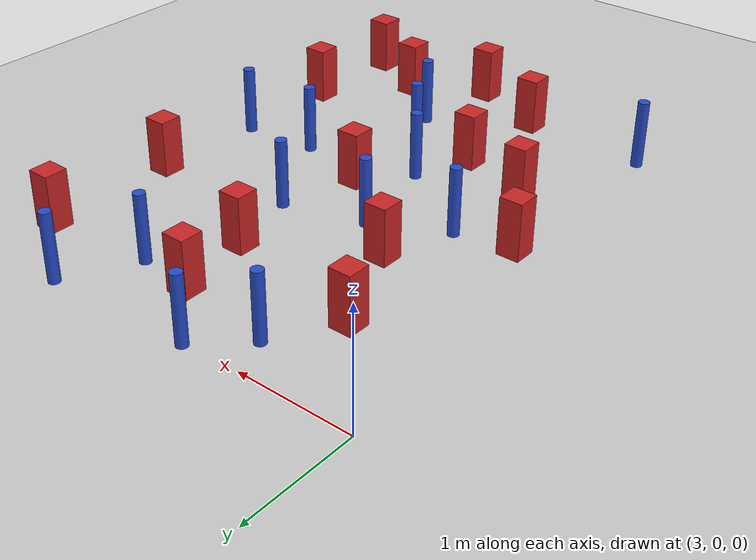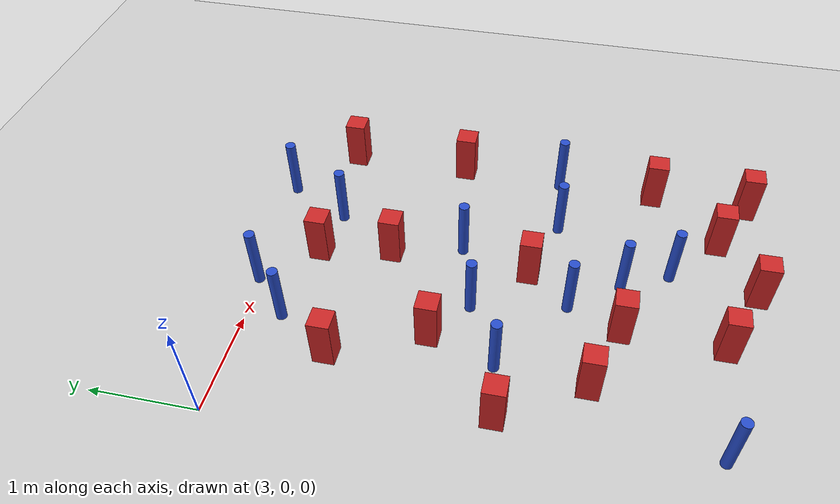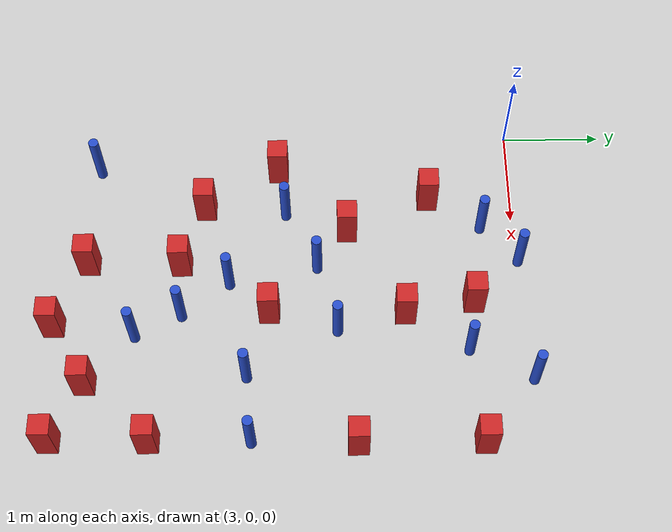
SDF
<sdf version="1.6">
 <world name="default">
  <model name="ground_plane">
   <static>1</static>
   <link name="link">
    <collision name="collision">
     <geometry><plane><normal>0 0 1</normal><size>100 100</size></plane></geometry>
     <surface><friction><ode><mu>100</mu><mu2>50</mu2></ode></friction></surface>
    </collision>
    <visual name="visual">
     <cast_shadows>0</cast_shadows>
     <geometry><plane><normal>0 0 1</normal><size>100 100</size></plane></geometry>
     <material>
      <ambient>1.0 1.0 1.0 1.0</ambient>
      <diffuse>0.8 0.8 0.8 1.0</diffuse>
      <specular>0.01 0.01 0.01 1.000000</specular>
     </material>
    </visual>
   </link>
  </model>
  <model name="pole_obstacle16">
   <static>true</static>
   <pose>4.10393876735 -0.329731906449 2.88873142074e-08 -9.90536689981e-09 4.60219948986e-07 -1.20965994962e-07</pose>
   <link name="link">
    <pose>0 0 0.3 0 -0 0</pose>
    <inertial>
     <mass>1</mass>
     <inertia><ixx>0.145833</ixx><ixy>0</ixy><ixz>0</ixz><iyy>0.145833</iyy><iyz>0</iyz><izz>0.125</izz></inertia>
    </inertial>
    <collision name="collision">
     <geometry><cylinder><radius>0.05</radius><length>.6</length></cylinder></geometry>
    </collision>
    <visual name="visual">
     <geometry><cylinder><radius>0.05</radius><length>.6</length></cylinder></geometry>
     <material>
      <script><name>Gazebo/Blue</name><uri>file://media/materials/scripts/gazebo.material</uri></script>
     </material>
    </visual>
   </link>
  </model>
  <model name="pole_obstacle36">
   <static>true</static>
   <pose>3.38603469121 -4.26538103777 2.88873142074e-08 -9.90536689859e-09 4.60219948989e-07 -1.20965994961e-07</pose>
   <link name="link">
    <pose>0 0 0.3 0 -0 0</pose>
    <inertial>
     <mass>1</mass>
     <inertia><ixx>0.145833</ixx><ixy>0</ixy><ixz>0</ixz><iyy>0.145833</iyy><iyz>0</iyz><izz>0.125</izz></inertia>
    </inertial>
    <collision name="collision">
     <geometry><cylinder><radius>0.05</radius><length>.6</length></cylinder></geometry>
    </collision>
    <visual name="visual">
     <geometry><cylinder><radius>0.05</radius><length>.6</length></cylinder></geometry>
     <material>
      <script><name>Gazebo/Blue</name><uri>file://media/materials/scripts/gazebo.material</uri></script>
     </material>
    </visual>
   </link>
  </model>
  <model name="pole_obstacle39">
   <static>true</static>
   <pose>4.72475378605 -2.88024928245 2.88873142074e-08 -9.90536690245e-09 4.6021994898e-07 -1.20965994966e-07</pose>
   <link name="link">
    <pose>0 0 0.3 0 -0 0</pose>
    <inertial>
     <mass>1</mass>
     <inertia><ixx>0.145833</ixx><ixy>0</ixy><ixz>0</ixz><iyy>0.145833</iyy><iyz>0</iyz><izz>0.125</izz></inertia>
    </inertial>
    <collision name="collision">
     <geometry><cylinder><radius>0.05</radius><length>.6</length></cylinder></geometry>
    </collision>
    <visual name="visual">
     <geometry><cylinder><radius>0.05</radius><length>.6</length></cylinder></geometry>
     <material>
      <script><name>Gazebo/Blue</name><uri>file://media/materials/scripts/gazebo.material</uri></script>
     </material>
    </visual>
   </link>
  </model>
  <model name="square_post_obstacle40">
   <static>true</static>
   <pose>5.0779610593 -1.13117154271 8.22691968438e-08 7.2212513382e-06 -7.54495500217e-07 2.29674213826e-05</pose>
   <link name="link">
    <pose>0 0 0.25 0 -0 0</pose>
    <inertial>
     <mass>100</mass>
     <inertia>
      <ixx>0.166667</ixx>
      <ixy>0</ixy>
      <ixz>0</ixz>
      <iyy>0.166667</iyy>
      <iyz>0</iyz>
      <izz>0.166667</izz>
     </inertia>
    </inertial>
    <collision name="collision"><geometry><box><size>.2 .2 .5</size></box></geometry></collision>
    <visual name="visual">
     <geometry><box><size>.2 .2 .5</size></box></geometry>
     <material>
      <script><name>Gazebo/Red</name><uri>file://media/materials/scripts/gazebo.material</uri></script>
     </material>
    </visual>
   </link>
  </model>
  <model name="pole_obstacle46">
   <static>true</static>
   <pose>5.74136471731 -2.68708174946 2.88873142074e-08 -9.90536690245e-09 4.6021994898e-07 -1.20965994966e-07</pose>
   <link name="link">
    <pose>0 0 0.3 0 -0 0</pose>
    <inertial>
     <mass>1</mass>
     <inertia><ixx>0.145833</ixx><ixy>0</ixy><ixz>0</ixz><iyy>0.145833</iyy><iyz>0</iyz><izz>0.125</izz></inertia>
    </inertial>
    <collision name="collision">
     <geometry><cylinder><radius>0.05</radius><length>.6</length></cylinder></geometry>
    </collision>
    <visual name="visual">
     <geometry><cylinder><radius>0.05</radius><length>.6</length></cylinder></geometry>
     <material>
      <script><name>Gazebo/Blue</name><uri>file://media/materials/scripts/gazebo.material</uri></script>
     </material>
    </visual>
   </link>
  </model>
  <model name="square_post_obstacle53">
   <static>true</static>
   <pose>5.05509290788 -2.47497143561 8.22691968438e-08 7.2212513382e-06 -7.54495500217e-07 2.29674213826e-05</pose>
   <link name="link">
    <pose>0 0 0.25 0 -0 0</pose>
    <inertial>
     <mass>100</mass>
     <inertia>
      <ixx>0.166667</ixx>
      <ixy>0</ixy>
      <ixz>0</ixz>
      <iyy>0.166667</iyy>
      <iyz>0</iyz>
      <izz>0.166667</izz>
     </inertia>
    </inertial>
    <collision name="collision"><geometry><box><size>.2 .2 .5</size></box></geometry></collision>
    <visual name="visual">
     <geometry><box><size>.2 .2 .5</size></box></geometry>
     <material>
      <script><name>Gazebo/Red</name><uri>file://media/materials/scripts/gazebo.material</uri></script>
     </material>
    </visual>
   </link>
  </model>
  <model name="square_post_obstacle64">
   <static>true</static>
   <pose>4.49527817915 -4.29552521567 8.22691968438e-08 7.22125133819e-06 -7.54495500217e-07 2.29674213826e-05</pose>
   <link name="link">
    <pose>0 0 0.25 0 -0 0</pose>
    <inertial>
     <mass>100</mass>
     <inertia>
      <ixx>0.166667</ixx>
      <ixy>0</ixy>
      <ixz>0</ixz>
      <iyy>0.166667</iyy>
      <iyz>0</iyz>
      <izz>0.166667</izz>
     </inertia>
    </inertial>
    <collision name="collision"><geometry><box><size>.2 .2 .5</size></box></geometry></collision>
    <visual name="visual">
     <geometry><box><size>.2 .2 .5</size></box></geometry>
     <material>
      <script><name>Gazebo/Red</name><uri>file://media/materials/scripts/gazebo.material</uri></script>
     </material>
    </visual>
   </link>
  </model>
  <model name="pole_obstacle74">
   <static>true</static>
   <pose>5.07601663097 -3.34591447213 2.88873142074e-08 -9.90536690245e-09 4.6021994898e-07 -1.20965994966e-07</pose>
   <link name="link">
    <pose>0 0 0.3 0 -0 0</pose>
    <inertial>
     <mass>1</mass>
     <inertia><ixx>0.145833</ixx><ixy>0</ixy><ixz>0</ixz><iyy>0.145833</iyy><iyz>0</iyz><izz>0.125</izz></inertia>
    </inertial>
    <collision name="collision">
     <geometry><cylinder><radius>0.05</radius><length>.6</length></cylinder></geometry>
    </collision>
    <visual name="visual">
     <geometry><cylinder><radius>0.05</radius><length>.6</length></cylinder></geometry>
     <material>
      <script><name>Gazebo/Blue</name><uri>file://media/materials/scripts/gazebo.material</uri></script>
     </material>
    </visual>
   </link>
  </model>
  <model name="square_post_obstacle82">
   <static>true</static>
   <pose>4.51453344151 -3.36527250385 8.22691968438e-08 7.2212513382e-06 -7.54495500217e-07 2.29674213826e-05</pose>
   <link name="link">
    <pose>0 0 0.25 0 -0 0</pose>
    <inertial>
     <mass>100</mass>
     <inertia>
      <ixx>0.166667</ixx>
      <ixy>0</ixy>
      <ixz>0</ixz>
      <iyy>0.166667</iyy>
      <iyz>0</iyz>
      <izz>0.166667</izz>
     </inertia>
    </inertial>
    <collision name="collision"><geometry><box><size>.2 .2 .5</size></box></geometry></collision>
    <visual name="visual">
     <geometry><box><size>.2 .2 .5</size></box></geometry>
     <material>
      <script><name>Gazebo/Red</name><uri>file://media/materials/scripts/gazebo.material</uri></script>
     </material>
    </visual>
   </link>
  </model>
  <model name="square_post_obstacle89">
   <static>true</static>
   <pose>5.18198364785 -4.59470534881 8.22691968438e-08 7.22125133819e-06 -7.54495500217e-07 2.29674213826e-05</pose>
   <link name="link">
    <pose>0 0 0.25 0 -0 0</pose>
    <inertial>
     <mass>100</mass>
     <inertia>
      <ixx>0.166667</ixx>
      <ixy>0</ixy>
      <ixz>0</ixz>
      <iyy>0.166667</iyy>
      <iyz>0</iyz>
      <izz>0.166667</izz>
     </inertia>
    </inertial>
    <collision name="collision"><geometry><box><size>.2 .2 .5</size></box></geometry></collision>
    <visual name="visual">
     <geometry><box><size>.2 .2 .5</size></box></geometry>
     <material>
      <script><name>Gazebo/Red</name><uri>file://media/materials/scripts/gazebo.material</uri></script>
     </material>
    </visual>
   </link>
  </model>
  <model name="square_post_obstacle95">
   <static>true</static>
   <pose>3.86135219473 -3.14104356581 8.22691968438e-08 7.2212513382e-06 -7.54495500217e-07 2.29674213826e-05</pose>
   <link name="link">
    <pose>0 0 0.25 0 -0 0</pose>
    <inertial>
     <mass>100</mass>
     <inertia>
      <ixx>0.166667</ixx>
      <ixy>0</ixy>
      <ixz>0</ixz>
      <iyy>0.166667</iyy>
      <iyz>0</iyz>
      <izz>0.166667</izz>
     </inertia>
    </inertial>
    <collision name="collision"><geometry><box><size>.2 .2 .5</size></box></geometry></collision>
    <visual name="visual">
     <geometry><box><size>.2 .2 .5</size></box></geometry>
     <material>
      <script><name>Gazebo/Red</name><uri>file://media/materials/scripts/gazebo.material</uri></script>
     </material>
    </visual>
   </link>
  </model>
  <model name="pole_obstacle116">
   <static>true</static>
   <pose>5.47581330239 -0.514907667353 2.88873142074e-08 -9.90536689968e-09 4.60219948986e-07 -1.20965994963e-07</pose>
   <link name="link">
    <pose>0 0 0.3 0 -0 0</pose>
    <inertial>
     <mass>1</mass>
     <inertia><ixx>0.145833</ixx><ixy>0</ixy><ixz>0</ixz><iyy>0.145833</iyy><iyz>0</iyz><izz>0.125</izz></inertia>
    </inertial>
    <collision name="collision">
     <geometry><cylinder><radius>0.05</radius><length>.6</length></cylinder></geometry>
    </collision>
    <visual name="visual">
     <geometry><cylinder><radius>0.05</radius><length>.6</length></cylinder></geometry>
     <material>
      <script><name>Gazebo/Blue</name><uri>file://media/materials/scripts/gazebo.material</uri></script>
     </material>
    </visual>
   </link>
  </model>
  <model name="pole_obstacle119">
   <static>true</static>
   <pose>6.40695636859 -2.62847848834 2.88873142074e-08 -9.90536690245e-09 4.6021994898e-07 -1.20965994966e-07</pose>
   <link name="link">
    <pose>0 0 0.3 0 -0 0</pose>
    <inertial>
     <mass>1</mass>
     <inertia><ixx>0.145833</ixx><ixy>0</ixy><ixz>0</ixz><iyy>0.145833</iyy><iyz>0</iyz><izz>0.125</izz></inertia>
    </inertial>
    <collision name="collision">
     <geometry><cylinder><radius>0.05</radius><length>.6</length></cylinder></geometry>
    </collision>
    <visual name="visual">
     <geometry><cylinder><radius>0.05</radius><length>.6</length></cylinder></geometry>
     <material>
      <script><name>Gazebo/Blue</name><uri>file://media/materials/scripts/gazebo.material</uri></script>
     </material>
    </visual>
   </link>
  </model>
  <model name="square_post_obstacle114">
   <static>true</static>
   <pose>6.38278532334 -4.53288457814 8.22691968438e-08 7.22125133819e-06 -7.54495500217e-07 2.29674213826e-05</pose>
   <link name="link">
    <pose>0 0 0.25 0 -0 0</pose>
    <inertial>
     <mass>100</mass>
     <inertia>
      <ixx>0.166667</ixx>
      <ixy>0</ixy>
      <ixz>0</ixz>
      <iyy>0.166667</iyy>
      <iyz>0</iyz>
      <izz>0.166667</izz>
     </inertia>
    </inertial>
    <collision name="collision"><geometry><box><size>.2 .2 .5</size></box></geometry></collision>
    <visual name="visual">
     <geometry><box><size>.2 .2 .5</size></box></geometry>
     <material>
      <script><name>Gazebo/Red</name><uri>file://media/materials/scripts/gazebo.material</uri></script>
     </material>
    </visual>
   </link>
  </model>
  <model name="square_post_obstacle116">
   <static>true</static>
   <pose>3.41114379709 -2.40123617568 8.22691968438e-08 7.2212513382e-06 -7.54495500217e-07 2.29674213826e-05</pose>
   <link name="link">
    <pose>0 0 0.25 0 -0 0</pose>
    <inertial>
     <mass>100</mass>
     <inertia>
      <ixx>0.166667</ixx>
      <ixy>0</ixy>
      <ixz>0</ixz>
      <iyy>0.166667</iyy>
      <iyz>0</iyz>
      <izz>0.166667</izz>
     </inertia>
    </inertial>
    <collision name="collision"><geometry><box><size>.2 .2 .5</size></box></geometry></collision>
    <visual name="visual">
     <geometry><box><size>.2 .2 .5</size></box></geometry>
     <material>
      <script><name>Gazebo/Red</name><uri>file://media/materials/scripts/gazebo.material</uri></script>
     </material>
    </visual>
   </link>
  </model>
  <model name="pole_obstacle136">
   <static>true</static>
   <pose>5.25550344633 -1.80153057896 2.88873142074e-08 -9.90536689445e-09 4.60219948999e-07 -1.20965994956e-07</pose>
   <link name="link">
    <pose>0 0 0.3 0 -0 0</pose>
    <inertial>
     <mass>1</mass>
     <inertia><ixx>0.145833</ixx><ixy>0</ixy><ixz>0</ixz><iyy>0.145833</iyy><iyz>0</iyz><izz>0.125</izz></inertia>
    </inertial>
    <collision name="collision">
     <geometry><cylinder><radius>0.05</radius><length>.6</length></cylinder></geometry>
    </collision>
    <visual name="visual">
     <geometry><cylinder><radius>0.05</radius><length>.6</length></cylinder></geometry>
     <material>
      <script><name>Gazebo/Blue</name><uri>file://media/materials/scripts/gazebo.material</uri></script>
     </material>
    </visual>
   </link>
  </model>
  <model name="square_post_obstacle122">
   <static>true</static>
   <pose>4.95694424288 -0.447218196587 8.22691968438e-08 7.2212513382e-06 -7.54495500217e-07 2.29674213826e-05</pose>
   <link name="link">
    <pose>0 0 0.25 0 -0 0</pose>
    <inertial>
     <mass>100</mass>
     <inertia>
      <ixx>0.166667</ixx>
      <ixy>0</ixy>
      <ixz>0</ixz>
      <iyy>0.166667</iyy>
      <iyz>0</iyz>
      <izz>0.166667</izz>
     </inertia>
    </inertial>
    <collision name="collision"><geometry><box><size>.2 .2 .5</size></box></geometry></collision>
    <visual name="visual">
     <geometry><box><size>.2 .2 .5</size></box></geometry>
     <material>
      <script><name>Gazebo/Red</name><uri>file://media/materials/scripts/gazebo.material</uri></script>
     </material>
    </visual>
   </link>
  </model>
  <model name="pole_obstacle140">
   <static>true</static>
   <pose>5.29842400481 -3.79594024571 2.88873142074e-08 -9.90536690245e-09 4.6021994898e-07 -1.20965994966e-07</pose>
   <link name="link">
    <pose>0 0 0.3 0 -0 0</pose>
    <inertial>
     <mass>1</mass>
     <inertia><ixx>0.145833</ixx><ixy>0</ixy><ixz>0</ixz><iyy>0.145833</iyy><iyz>0</iyz><izz>0.125</izz></inertia>
    </inertial>
    <collision name="collision">
     <geometry><cylinder><radius>0.05</radius><length>.6</length></cylinder></geometry>
    </collision>
    <visual name="visual">
     <geometry><cylinder><radius>0.05</radius><length>.6</length></cylinder></geometry>
     <material>
      <script><name>Gazebo/Blue</name><uri>file://media/materials/scripts/gazebo.material</uri></script>
     </material>
    </visual>
   </link>
  </model>
  <model name="square_post_obstacle129">
   <static>true</static>
   <pose>4.13688390705 -1.69791043457 8.22691968438e-08 7.2212513382e-06 -7.54495500217e-07 2.29674213826e-05</pose>
   <link name="link">
    <pose>0 0 0.25 0 -0 0</pose>
    <inertial>
     <mass>100</mass>
     <inertia>
      <ixx>0.166667</ixx>
      <ixy>0</ixy>
      <ixz>0</ixz>
      <iyy>0.166667</iyy>
      <iyz>0</iyz>
      <izz>0.166667</izz>
     </inertia>
    </inertial>
    <collision name="collision"><geometry><box><size>.2 .2 .5</size></box></geometry></collision>
    <visual name="visual">
     <geometry><box><size>.2 .2 .5</size></box></geometry>
     <material>
      <script><name>Gazebo/Red</name><uri>file://media/materials/scripts/gazebo.material</uri></script>
     </material>
    </visual>
   </link>
  </model>
  <model name="pole_obstacle148">
   <static>true</static>
   <pose>4.54901932242 -2.00124480596 2.88873142074e-08 -9.90536689749e-09 4.60219948991e-07 -1.20965994959e-07</pose>
   <link name="link">
    <pose>0 0 0.3 0 -0 0</pose>
    <inertial>
     <mass>1</mass>
     <inertia><ixx>0.145833</ixx><ixy>0</ixy><ixz>0</ixz><iyy>0.145833</iyy><iyz>0</iyz><izz>0.125</izz></inertia>
    </inertial>
    <collision name="collision">
     <geometry><cylinder><radius>0.05</radius><length>.6</length></cylinder></geometry>
    </collision>
    <visual name="visual">
     <geometry><cylinder><radius>0.05</radius><length>.6</length></cylinder></geometry>
     <material>
      <script><name>Gazebo/Blue</name><uri>file://media/materials/scripts/gazebo.material</uri></script>
     </material>
    </visual>
   </link>
  </model>
  <model name="square_post_obstacle160">
   <static>true</static>
   <pose>5.80100388611 -4.24146071701 8.22691968438e-08 7.22125133819e-06 -7.54495500217e-07 2.29674213826e-05</pose>
   <link name="link">
    <pose>0 0 0.25 0 -0 0</pose>
    <inertial>
     <mass>100</mass>
     <inertia>
      <ixx>0.166667</ixx>
      <ixy>0</ixy>
      <ixz>0</ixz>
      <iyy>0.166667</iyy>
      <iyz>0</iyz>
      <izz>0.166667</izz>
     </inertia>
    </inertial>
    <collision name="collision"><geometry><box><size>.2 .2 .5</size></box></geometry></collision>
    <visual name="visual">
     <geometry><box><size>.2 .2 .5</size></box></geometry>
     <material>
      <script><name>Gazebo/Red</name><uri>file://media/materials/scripts/gazebo.material</uri></script>
     </material>
    </visual>
   </link>
  </model>
  <model name="square_post_obstacle169">
   <static>true</static>
   <pose>6.43095597595 -0.418834882778 8.22691968438e-08 7.2212513382e-06 -7.54495500217e-07 2.29674213826e-05</pose>
   <link name="link">
    <pose>0 0 0.25 0 -0 0</pose>
    <inertial>
     <mass>100</mass>
     <inertia>
      <ixx>0.166667</ixx>
      <ixy>0</ixy>
      <ixz>0</ixz>
      <iyy>0.166667</iyy>
      <iyz>0</iyz>
      <izz>0.166667</izz>
     </inertia>
    </inertial>
    <collision name="collision"><geometry><box><size>.2 .2 .5</size></box></geometry></collision>
    <visual name="visual">
     <geometry><box><size>.2 .2 .5</size></box></geometry>
     <material>
      <script><name>Gazebo/Red</name><uri>file://media/materials/scripts/gazebo.material</uri></script>
     </material>
    </visual>
   </link>
  </model>
  <model name="pole_obstacle179">
   <static>true</static>
   <pose>3.92574005497 -2.32252557581 2.88873142074e-08 -9.90536690232e-09 4.6021994898e-07 -1.20965994968e-07</pose>
   <link name="link">
    <pose>0 0 0.3 0 -0 0</pose>
    <inertial>
     <mass>1</mass>
     <inertia><ixx>0.145833</ixx><ixy>0</ixy><ixz>0</ixz><iyy>0.145833</iyy><iyz>0</iyz><izz>0.125</izz></inertia>
    </inertial>
    <collision name="collision">
     <geometry><cylinder><radius>0.05</radius><length>.6</length></cylinder></geometry>
    </collision>
    <visual name="visual">
     <geometry><cylinder><radius>0.05</radius><length>.6</length></cylinder></geometry>
     <material>
      <script><name>Gazebo/Blue</name><uri>file://media/materials/scripts/gazebo.material</uri></script>
     </material>
    </visual>
   </link>
  </model>
  <model name="pole_obstacle185">
   <static>true</static>
   <pose>5.79050155967 0.0944160841133 2.88873142074e-08 -9.90536689727e-09 4.60219948992e-07 -1.20965994958e-07</pose>
   <link name="link">
    <pose>0 0 0.3 0 -0 0</pose>
    <inertial>
     <mass>1</mass>
     <inertia><ixx>0.145833</ixx><ixy>0</ixy><ixz>0</ixz><iyy>0.145833</iyy><iyz>0</iyz><izz>0.125</izz></inertia>
    </inertial>
    <collision name="collision">
     <geometry><cylinder><radius>0.05</radius><length>.6</length></cylinder></geometry>
    </collision>
    <visual name="visual">
     <geometry><cylinder><radius>0.05</radius><length>.6</length></cylinder></geometry>
     <material>
      <script><name>Gazebo/Blue</name><uri>file://media/materials/scripts/gazebo.material</uri></script>
     </material>
    </visual>
   </link>
  </model>
  <model name="square_post_obstacle173">
   <static>true</static>
   <pose>6.39635838201 -3.59390497213 8.22691968438e-08 7.2212513382e-06 -7.54495500217e-07 2.29674213826e-05</pose>
   <link name="link">
    <pose>0 0 0.25 0 -0 0</pose>
    <inertial>
     <mass>100</mass>
     <inertia>
      <ixx>0.166667</ixx>
      <ixy>0</ixy>
      <ixz>0</ixz>
      <iyy>0.166667</iyy>
      <iyz>0</iyz>
      <izz>0.166667</izz>
     </inertia>
    </inertial>
    <collision name="collision"><geometry><box><size>.2 .2 .5</size></box></geometry></collision>
    <visual name="visual">
     <geometry><box><size>.2 .2 .5</size></box></geometry>
     <material>
      <script><name>Gazebo/Red</name><uri>file://media/materials/scripts/gazebo.material</uri></script>
     </material>
    </visual>
   </link>
  </model>
  <model name="square_post_obstacle187">
   <static>true</static>
   <pose>6.43476464857 -1.61632257582 8.22691968438e-08 7.2212513382e-06 -7.54495500217e-07 2.29674213826e-05</pose>
   <link name="link">
    <pose>0 0 0.25 0 -0 0</pose>
    <inertial>
     <mass>100</mass>
     <inertia>
      <ixx>0.166667</ixx>
      <ixy>0</ixy>
      <ixz>0</ixz>
      <iyy>0.166667</iyy>
      <iyz>0</iyz>
      <izz>0.166667</izz>
     </inertia>
    </inertial>
    <collision name="collision"><geometry><box><size>.2 .2 .5</size></box></geometry></collision>
    <visual name="visual">
     <geometry><box><size>.2 .2 .5</size></box></geometry>
     <material>
      <script><name>Gazebo/Red</name><uri>file://media/materials/scripts/gazebo.material</uri></script>
     </material>
    </visual>
   </link>
  </model>
  <model name="pole_obstacle217">
   <static>true</static>
   <pose>4.49529000913 0.0323680204124 2.88873142074e-08 -9.90536689241e-09 4.60219949003e-07 -1.20965994952e-07</pose>
   <link name="link">
    <pose>0 0 0.3 0 -0 0</pose>
    <inertial>
     <mass>1</mass>
     <inertia><ixx>0.145833</ixx><ixy>0</ixy><ixz>0</ixz><iyy>0.145833</iyy><iyz>0</iyz><izz>0.125</izz></inertia>
    </inertial>
    <collision name="collision">
     <geometry><cylinder><radius>0.05</radius><length>.6</length></cylinder></geometry>
    </collision>
    <visual name="visual">
     <geometry><cylinder><radius>0.05</radius><length>.6</length></cylinder></geometry>
     <material>
      <script><name>Gazebo/Blue</name><uri>file://media/materials/scripts/gazebo.material</uri></script>
     </material>
    </visual>
   </link>
  </model>
  <model name="square_post_obstacle217">
   <static>true</static>
   <pose>3.76913003262 -0.865006035341 8.22691968438e-08 7.2212513382e-06 -7.54495500217e-07 2.29674213826e-05</pose>
   <link name="link">
    <pose>0 0 0.25 0 -0 0</pose>
    <inertial>
     <mass>100</mass>
     <inertia>
      <ixx>0.166667</ixx>
      <ixy>0</ixy>
      <ixz>0</ixz>
      <iyy>0.166667</iyy>
      <iyz>0</iyz>
      <izz>0.166667</izz>
     </inertia>
    </inertial>
    <collision name="collision"><geometry><box><size>.2 .2 .5</size></box></geometry></collision>
    <visual name="visual">
     <geometry><box><size>.2 .2 .5</size></box></geometry>
     <material>
      <script><name>Gazebo/Red</name><uri>file://media/materials/scripts/gazebo.material</uri></script>
     </material>
    </visual>
   </link>
  </model>
 </world>
</sdf>
